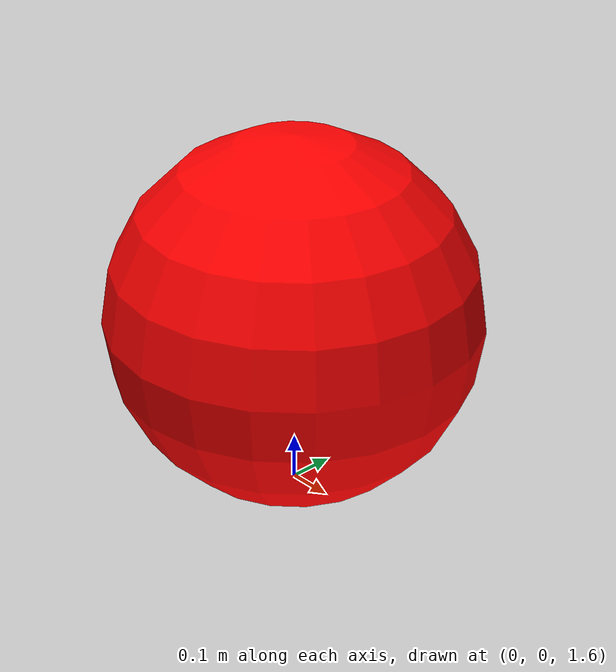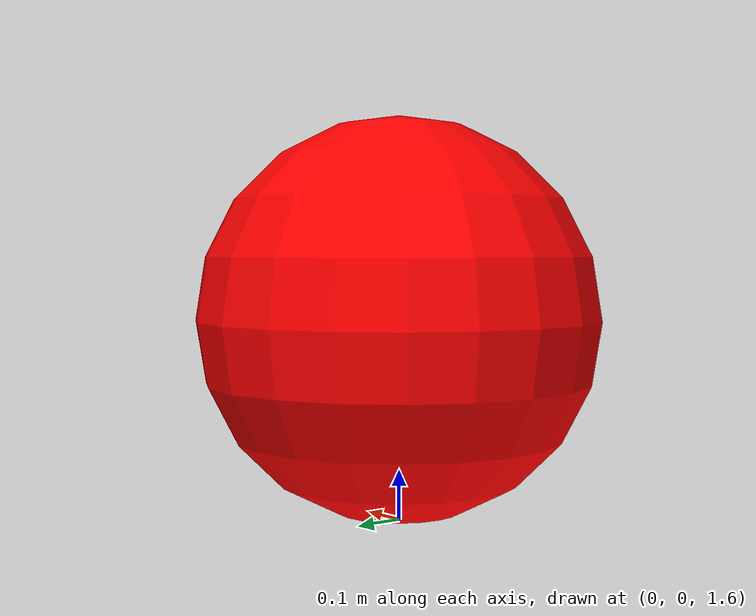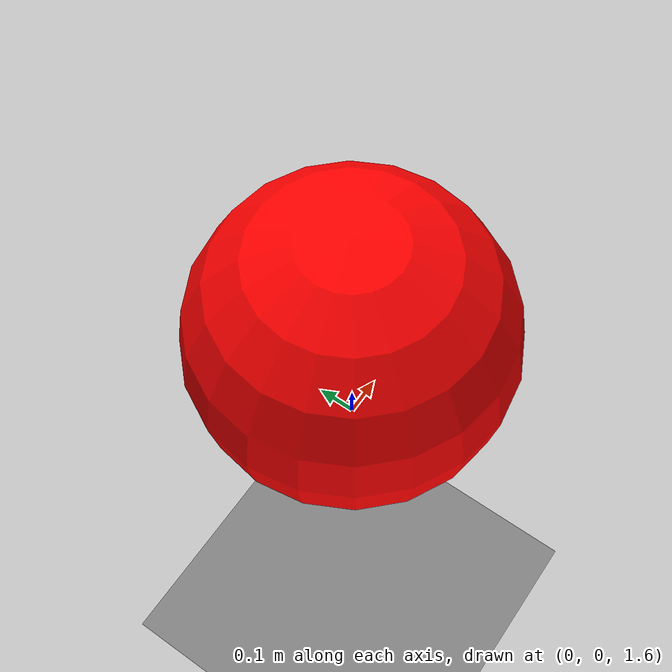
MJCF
<mujoco>
    <worldbody>
        <light pos="0 0 3" dir="0 0 -1"/>
        <geom type="plane" size="5 5 0.1"/>
        <body name="bot" pos="0 0 2">
            <freejoint/>

            <geom name="shell" type="sphere" size="0.4" rgba="1 0 0 1" mass="1.0"/>

            <geom name="car" type="sphere" size="0.15" pos="0 0 -0.25" rgba="0 1 0 1" mass="0.5"/>
        </body>
    </worldbody>
    <actuator>
    </actuator>
</mujoco>
